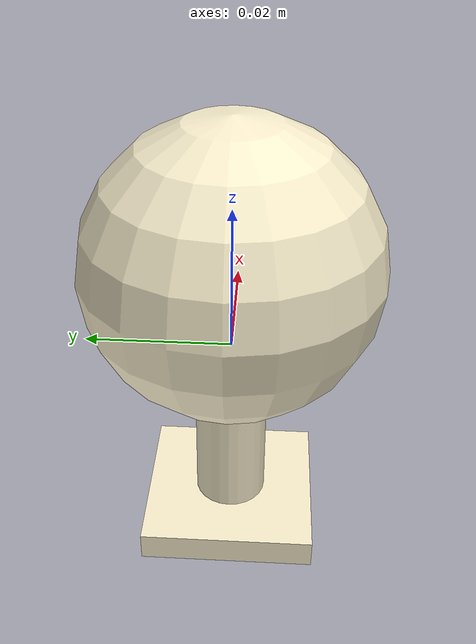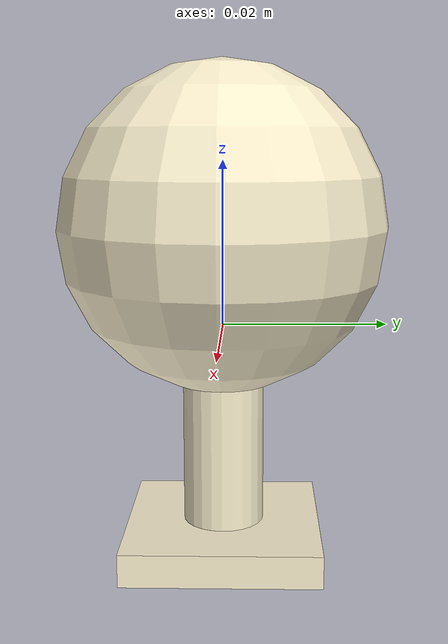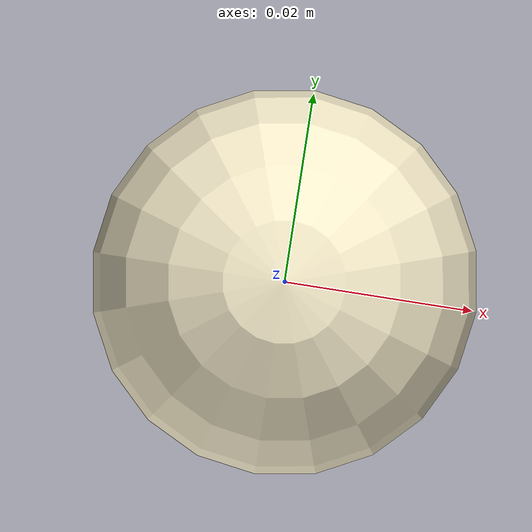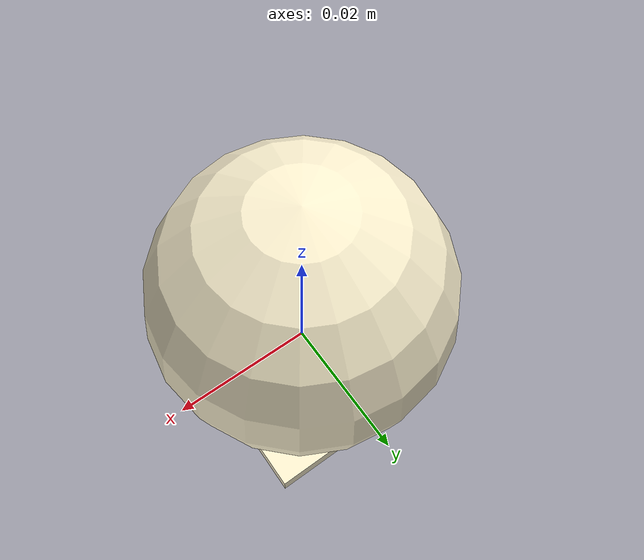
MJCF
<?xml version="1.0" encoding="utf-8"?>
<mujoco model="SpiRob_Egg">
  <compiler angle="radian" inertiafromgeom="true" autolimits="true" />
  <default>
    <geom density="300" friction="1.2 0.05 0.005" rgba="0.97 0.93 0.80 1.0"
          solref="0.01 1" solimp="0.9 0.95 0.05" contype="1" conaffinity="1" />
  </default>
  <worldbody>
    <body name="egg" pos="0 0 0">
      <joint name="egg_free" type="free" damping="0" stiffness="0" />
      <geom name="egg_body" type="cylinder" size="0.005 0.025" contype="1" conaffinity="1" />
      <geom name="egg_base" type="box" pos="0 0 -0.027" size="0.012 0.012 0.002" contype="1" conaffinity="1" />
      <geom name="egg_cap" type="sphere" pos="0 0 0.012" size="0.02" contype="1" conaffinity="1" />
    </body>
  </worldbody>
</mujoco>
